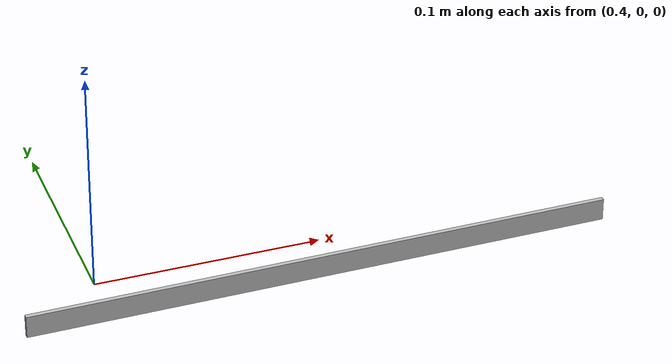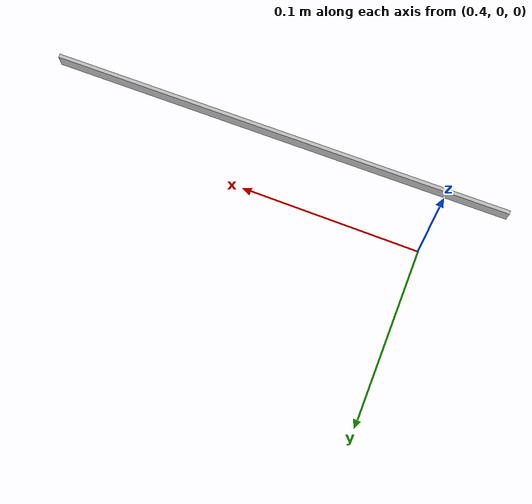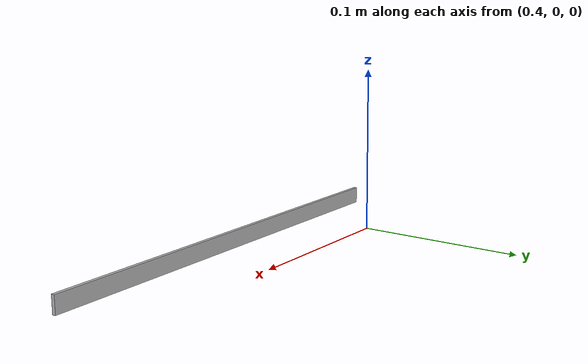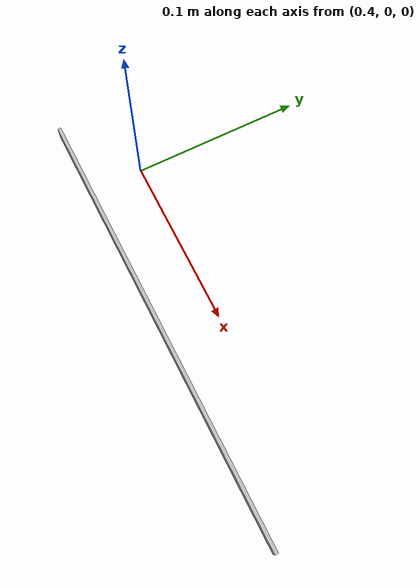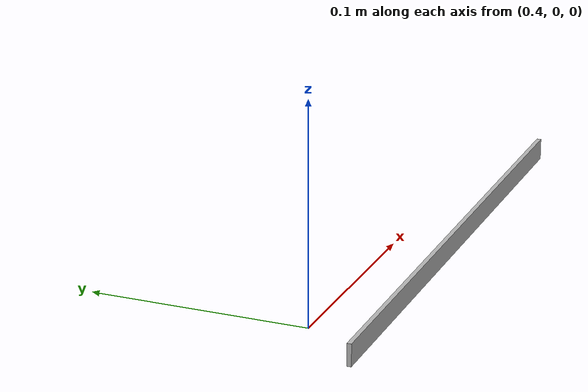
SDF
<?xml version="1.0"?>
<sdf version="1.5">
	<model name="cube">
		<static>true</static>
		<link name="box">
			<pose frame=''>0.49 -0.032 0.01 0.0 0.0 -1.5629839857347956</pose>
			<inertial>
				<mass>0.01</mass>
				<inertia>
					<ixx>0.01</ixx>
					<ixy>0</ixy>
					<ixz>0</ixz>
					<iyy>0.01</iyy>
					<iyz>0</iyz>
					<izz>0.01</izz>
				</inertia>
			</inertial>
			<visual name='box_visual'>
				<geometry>
					<box>
						<size>0.002 0.256 0.01</size>
					</box>
				</geometry>
			</visual>
			<self_collide>0</self_collide>
			<kinematic>0</kinematic>
			<gravity>1</gravity>
		</link>
	</model>
</sdf>
